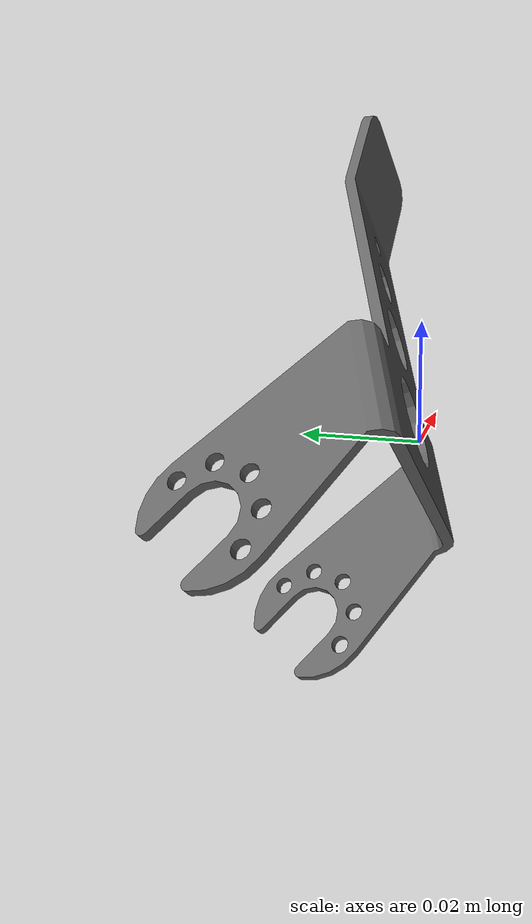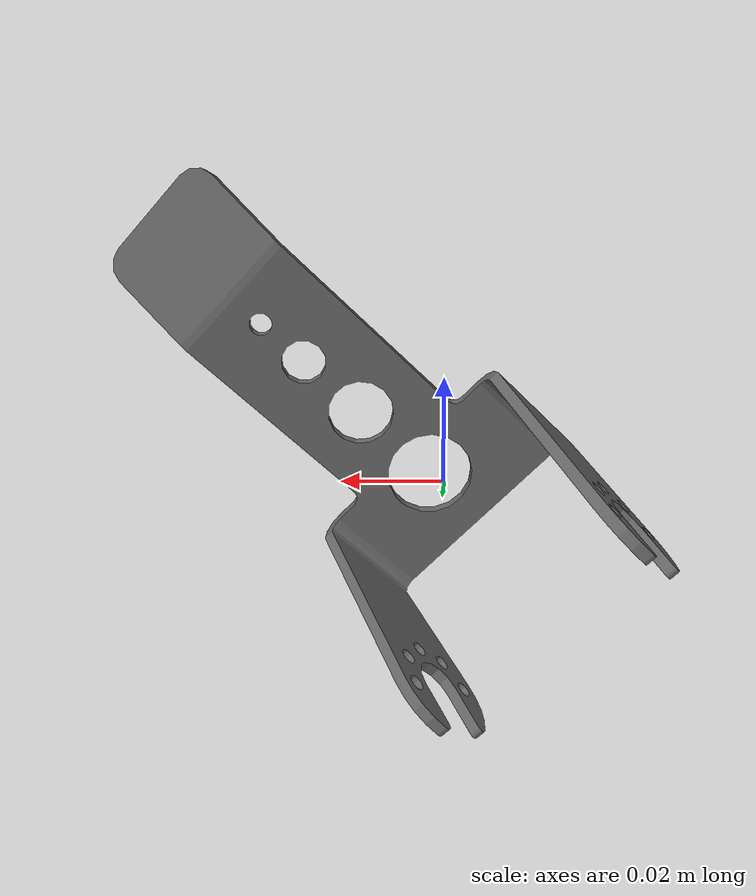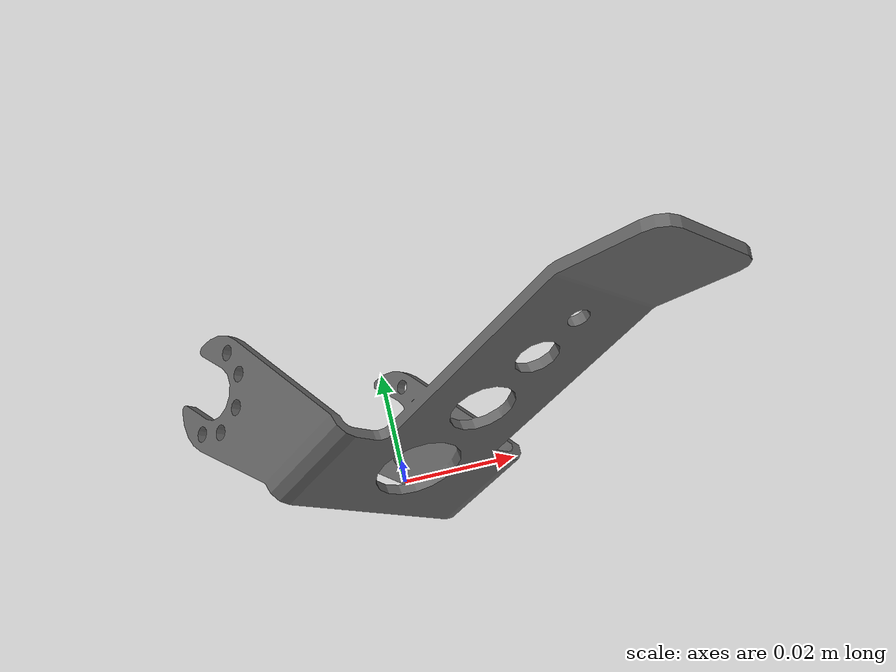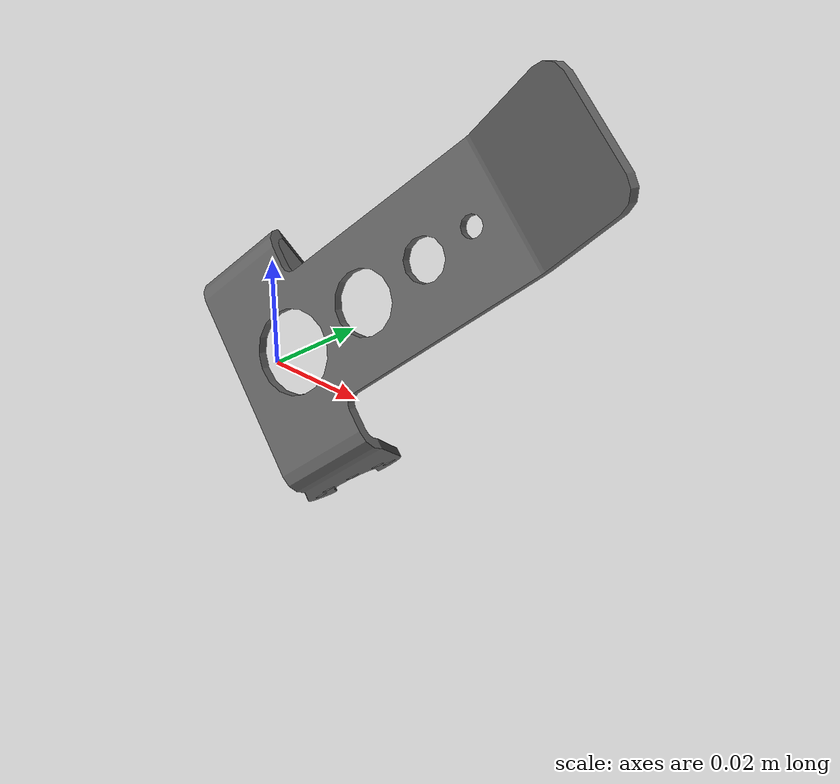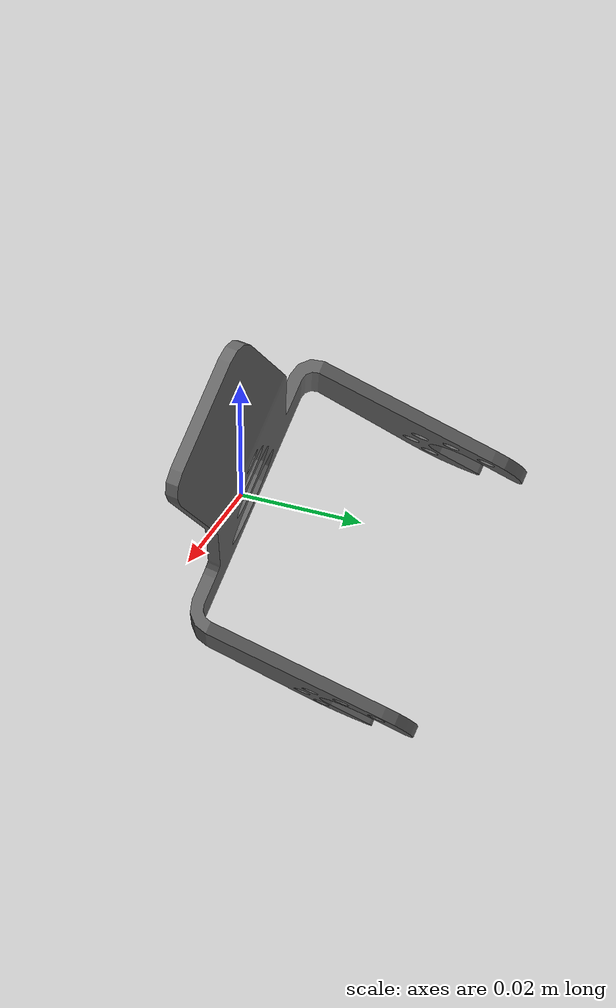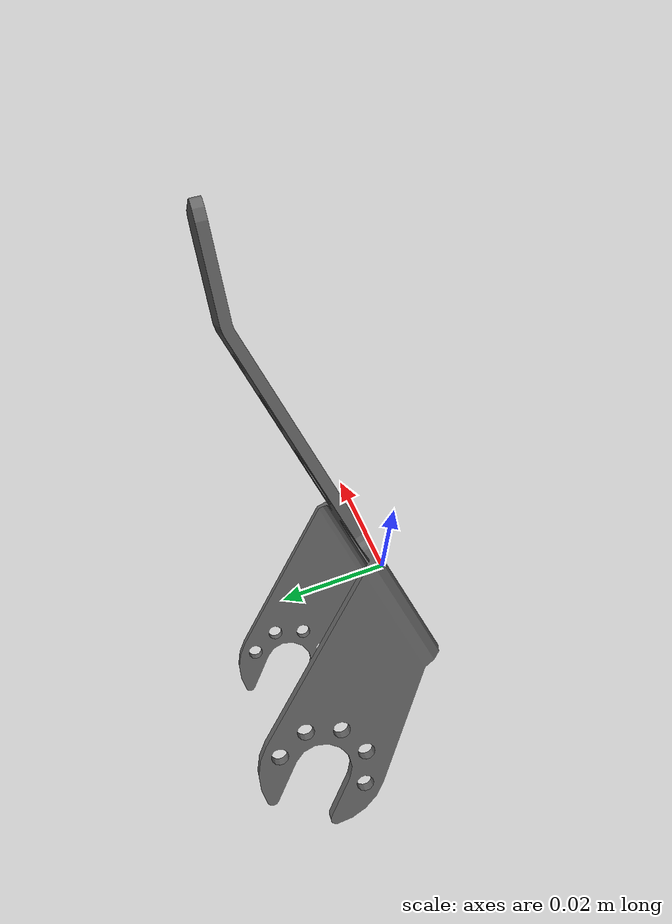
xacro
<robot name="right_finger_link"><link name="right_finger_link">
    <inertial>
      <origin rpy="0 0 0" xyz="2.77555756156289E-16 -0.0205697573116854 0.0301832532936965" />
      <mass value="0.0111981711598485" />
      <inertia ixx="9.7734982971327E-06" ixy="1.80407068651258E-20" ixz="2.78908224261042E-20" iyy="1.11277552627935E-05" iyz="-2.19026618569788E-06" izz="3.88602195211489E-06" />
    </inertial>
    <visual>
      <origin rpy="-0.185 0 0" xyz="0 0 0" />
      <geometry>
        <mesh filename="package://robotican_description/komodo/meshes/right_finger_link.STL" />
      </geometry>
      <material name="">
        <color rgba="0.4 0.4 0.4 1" />
      </material>
    </visual>
    <collision>
      <origin rpy="0 0 0" xyz="0 0 0" />
      <geometry>
        <mesh filename="package://robotican_description/komodo/meshes/right_finger_link.STL" />
      </geometry>
    </collision>
  </link>
  </robot>
